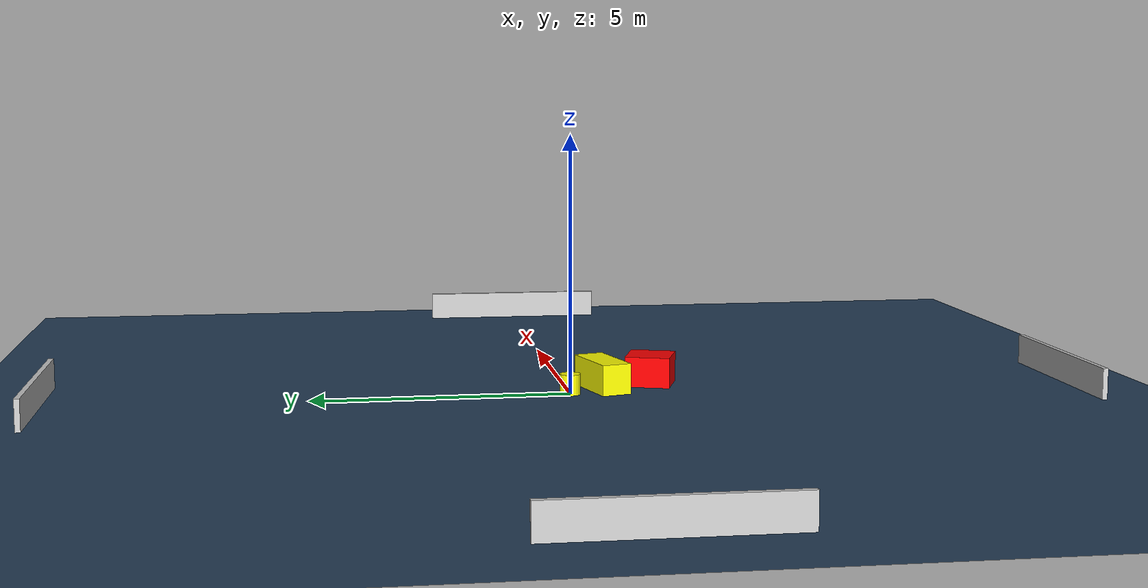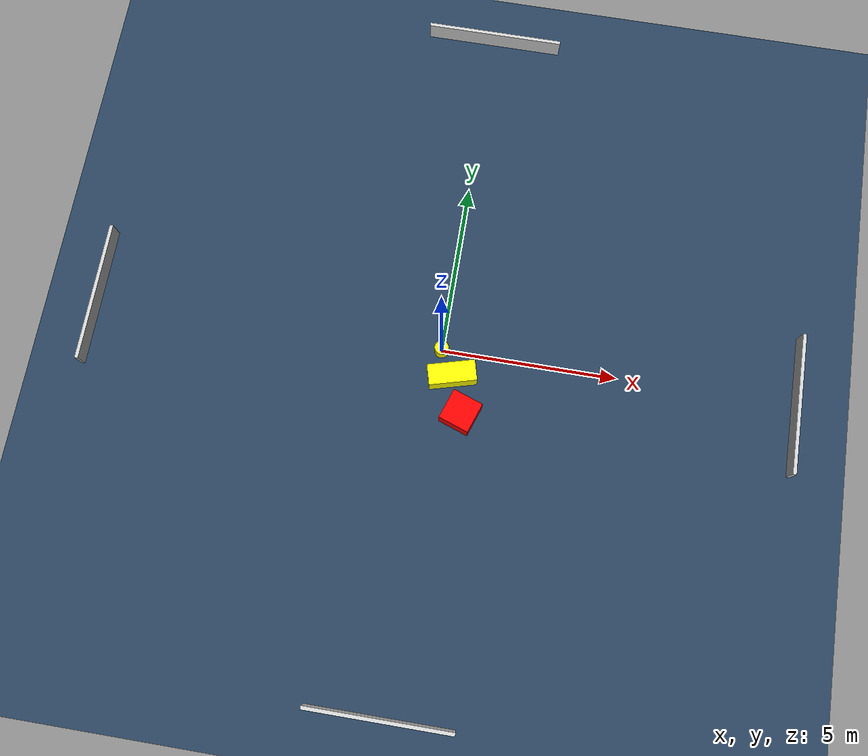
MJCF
<?xml version="1.0" ?>
<mujoco model="generated_environment">
  <option timestep="0.01" integrator="RK4" cone="elliptic"/>
  <default>
    <geom density="1"/>
  </default>
  <asset>
    <texture builtin="gradient" height="3072" name="skybox" rgb1="0.3 0.5 0.7" rgb2="0 0 0" type="skybox" width="512"/>
    <texture builtin="checker" height="300" name="groundplane" rgb1="0.2 0.3 0.4" rgb2="0.1 0.2 0.3" type="2d" width="300"/>
    <material name="groundplane" reflectance="0.2" texrepeat="5 5" texture="groundplane"/>
  </asset>
  <worldbody>
    <light dir="0 0 -1" directional="true" pos="0 0 1.5"/>
    <geom condim="3" friction="0.5 0.005 0.001" material="groundplane" name="floor" pos="0 0 0" size="0 0 0.05" type="plane"/>
    <body name="walls">
      <geom name="wall_1" condim="4" pos="-10.0 0.0 0.3" rgba="0.800000011920929 0.800000011920929 0.800000011920929 1.0" size="0.05 2.0 0.3" type="box"/>
      <geom name="wall_2" condim="4" pos="10.0 0.0 0.3" rgba="0.800000011920929 0.800000011920929 0.800000011920929 1.0" size="0.05 2.0 0.3" type="box"/>
      <geom name="wall_3" condim="4" pos="0.0 -10.0 0.3" rgba="0.800000011920929 0.800000011920929 0.800000011920929 1.0" size="2.0 0.05 0.3" type="box"/>
      <geom name="wall_4" condim="4" pos="0.0 10.0 0.3" rgba="0.800000011920929 0.800000011920929 0.800000011920929 1.0" size="2.0 0.05 0.3" type="box"/>
    </body>
    <body name="robot">
      <joint name="joint_x" type="slide" pos="0 0 0" axis="1 0 0"/>
      <joint name="joint_y" type="slide" pos="0 0 0" axis="0 1 0"/>
      <geom name="robot" type="cylinder" pos="0.0 0.0 0.2" size="0.2 0.2 0.0" mass="5.0" friction="1.0 0.005 0.0001" condim="4" rgba="1.0 1.0 0.0 1.0"/>
    </body>
    <body name="obstacle_1_movable">
      <geom name="obstacle_1_movable" condim="4" pos="0.40343967359676325 -0.6989014360952152 0.3" euler="0 0 285.23470715491004" friction="0.0 0.005 0.001" rgba="1.0 1.0 0.0 1.0" size="0.2944697304729707 0.6745038489374369 0.3" type="box" mass="0.1"/>
      <joint type="free"/>
    </body>
    <body name="obstacle_2_static">
      <geom name="obstacle_2_static" condim="4" pos="0.8144320288375846 -1.732167486019057 0.3" euler="0 0 70.83596072468895" friction="0.0 0.005 0.001" rgba="1.0 0.0 0.0 1.0" size="0.44433956695484533 0.4454827741494113 0.3" type="box"/>
    </body>
  </worldbody>
  <actuator>
    <motor name="actuator_x" joint="joint_x" gear="1" ctrlrange="-1 1"/>
    <motor name="actuator_y" joint="joint_y" gear="1" ctrlrange="-1 1"/>
  </actuator>
</mujoco>
